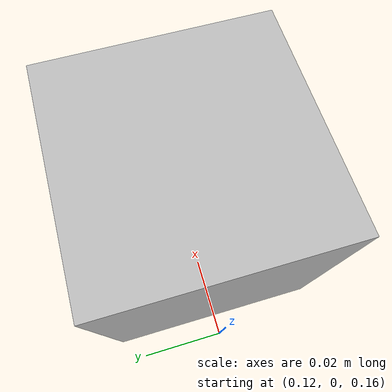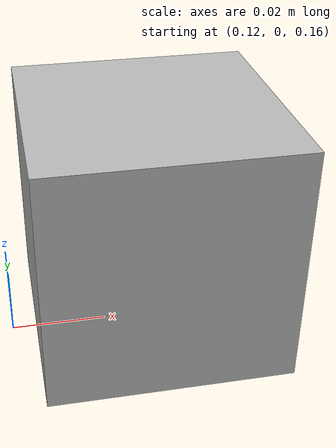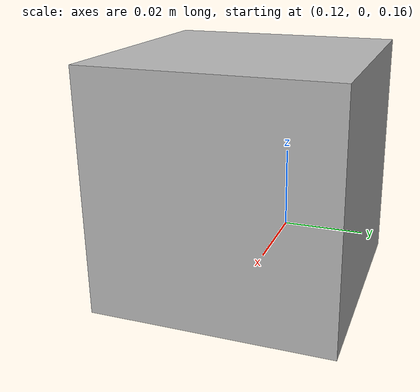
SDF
<?xml version='1.0'?>
<sdf version='1.6'>
	<model name="sensor">
	        <static>false</static>
	        <pose> 0.15 0 0.185011 0 0 0</pose>
	        <link name='head'>
	              <collision name="collision">
	                <geometry>
	                  <box>
	                    <size>0.05 0.05 0.05</size>
	                  </box>
	                </geometry>
	              </collision>
	              <visual name="visual">
	                <geometry>
	                  <box>
	                    <size>0.05 0.05 0.05</size>
	                  </box>
	                </geometry>
	              </visual>
	              <sensor name="laser" type="ray">
			   <pose>0 0 0 0 0 0</pose>
			   <ray>
			     <scan>
			       <horizontal>
				 <samples>181</samples>
				 <resolution>1</resolution>
				 <min_angle>-0.5</min_angle>
				 <max_angle>0.5</max_angle>
			       </horizontal>
			     </scan>
			     <range>
			       <min>0.08</min>
			       <max>10</max>
			       <resolution>0.05</resolution>
			     </range>
			   </ray>
			   <always_on>1</always_on>
			   <update_rate>10</update_rate>
			   <visualize>true</visualize>

			   <plugin name='laser' filename='libgazebo_ros_ray_sensor.so'>
			     <ros>
			       <namespace>/demo</namespace>
			       <argument>--ros-args --remap ~/out:=scan</argument>
			     </ros>
			     <output_type>sensor_msgs/LaserScan</output_type>
			   </plugin>
		       </sensor>
	        </link>
	</model>
</sdf>
